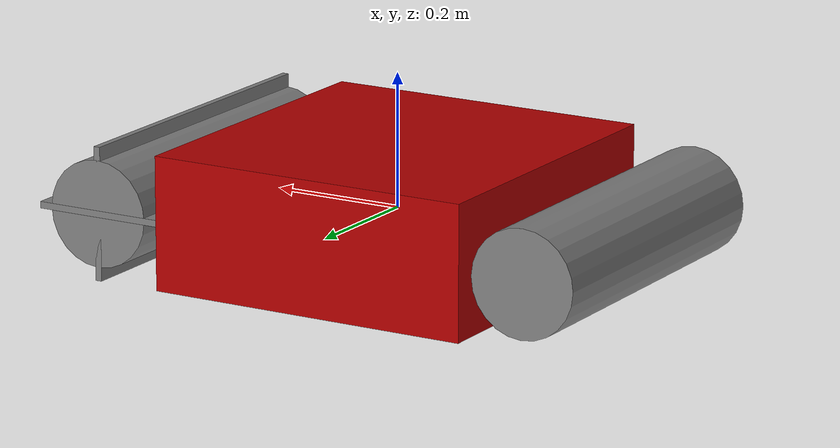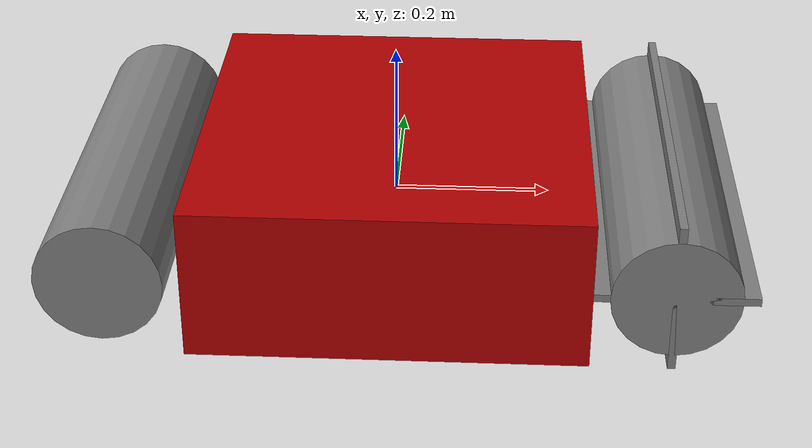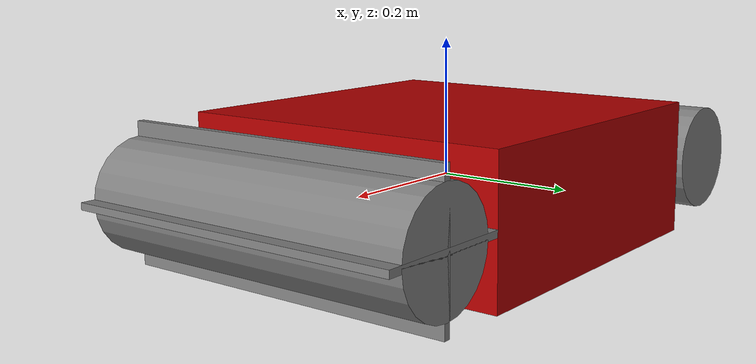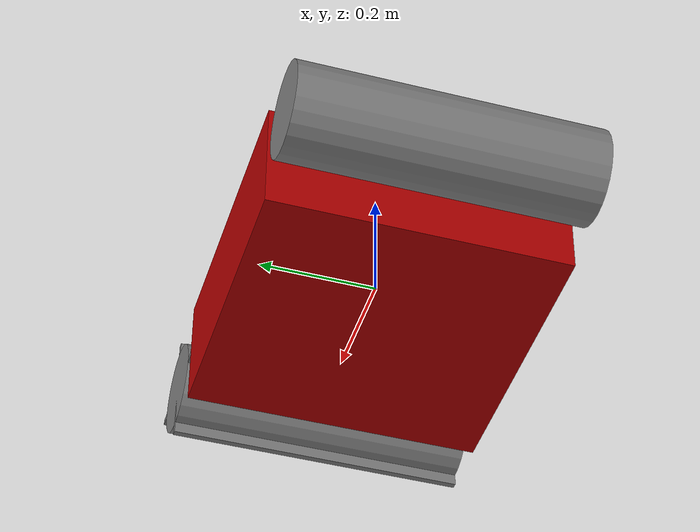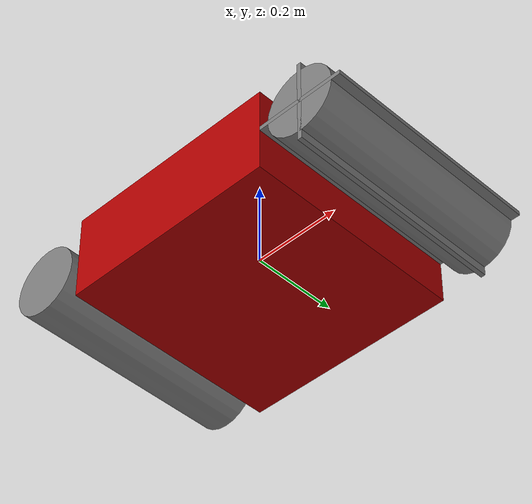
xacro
<robot name="example_track" xmlns:xacro="http://www.ros.org/wiki/xacro">

    <!-- URDF file for general ROS systems such as ros_control, rviz, etc.           -->
    <!-- We define here;                                                             -->
    <!--     * a body to be wrapped by the track                                     -->
    <!--     * a sprocket to drive the track                                         -->
    <!--     * an axle and actuator for the sprocket                                 -->
    <!--     * an idler wheel on the other side of the sprocket                      -->
    <!-- Other entities specialized for Gazebo are defined in *_gazebo.urdf.xacro .  -->

    <xacro:macro name="make_box_inertia" params="mass size_x size_y size_z">
        <inertial>
            <mass value="${mass}" />
            <inertia ixx="${mass * (size_y * size_y + size_z * size_z) / 12}" ixy="0" ixz="0" iyy="${mass * (size_z * size_z + size_x * size_x) / 12}" iyz="0" izz="${mass * (size_x * size_x + size_y * size_y) / 12}" />
        </inertial>
    </xacro:macro>

    <xacro:macro name="make_wheel_inertia" params="mass radius length">
        <inertial>
            <mass value="${mass}" />
            <!-- assuming axis of cylinder is y, not z -->
            <inertia ixx="${mass * (radius * radius / 4 + length * length / 12)}" ixy="0" ixz="0" iyy="${mass * radius * radius / 2}" iyz="0" izz="${mass * (radius * radius / 4 + length * length / 12)}" />
        </inertial>
    </xacro:macro>

    <!-- body to be wrapped by the track -->

    <link name="body">
        <xacro:make_box_inertia mass="1" size_x="0.5" size_y="0.51" size_z="0.2" />

        <visual>
            <geometry>
                <box size="0.5 0.51 0.2" />
            </geometry>
            <material name="red">
                <color rgba="0.7 0.0 0.0 1.0" />
            </material>
        </visual>

        <collision>
            <geometry>
                <box size="0.51 0.5 0.2" />
            </geometry>
        </collision>
    </link>

    <!-- sprocket driving the track -->

    <link name="sprocket">
        <xacro:make_wheel_inertia mass="0.2" radius="0.08" length="0.51" />

        <visual>
            <origin xyz="0 0 0" rpy="${pi / 2} 0 0" />
            <geometry>
                <cylinder radius="0.08" length="0.51" />
            </geometry>
            <material name="grey">
                <color rgba="0.5 0.5 0.5 1.0" />
            </material>
        </visual>
        <visual>
            <geometry>
                <box size="0.01 0.51 0.20" />
            </geometry>
            <material name="grey" />
        </visual>
        <visual>
            <geometry>
                <box size="0.20 0.51 0.01" />
            </geometry>
            <material name="grey" />
        </visual>

        <collision>
            <origin xyz="0 0 0" rpy="${pi / 2} 0 0" />
            <geometry>
                <cylinder radius="0.08" length="0.51" />
            </geometry>
        </collision>
    </link>

    <joint name="sprocket_axle" type="continuous">
        <origin xyz="0.35 0 0" rpy="0 0 0" />
        <parent link="body" />
        <child link="sprocket" />
        <axis xyz="0 1 0" />
    </joint>

    <transmission name="sprocket_transmission">
        <type>transmission_interface/SimpleTransmission</type>
        <joint name="sprocket_axle">
            <hardwareInterface>hardware_interface/VelocityJointInterface</hardwareInterface>
        </joint>
        <actuator name="sprocket_actuator">
            <mechanicalReduction>1</mechanicalReduction>
        </actuator>
    </transmission>

    <!-- idler on the other side of the sprocket -->

    <link name="idler">
        <xacro:make_wheel_inertia mass="0.2" radius="0.08" length="0.51" />

        <visual>
            <origin xyz="0 0 0" rpy="${pi / 2} 0 0" />
            <geometry>
                <cylinder radius="0.08" length="0.51" />
            </geometry>
            <material name="grey" />
        </visual>

        <collision>
            <origin xyz="0 0 0" rpy="${pi / 2} 0 0" />
            <geometry>
                <cylinder radius="0.08" length="0.51" />
            </geometry>
        </collision>
    </link>

    <joint name="idler_axle" type="fixed">
        <origin xyz="-0.35 0 0" rpy="0 0 0" />
        <parent link="body" />
        <child link="idler" />
    </joint>

</robot>
